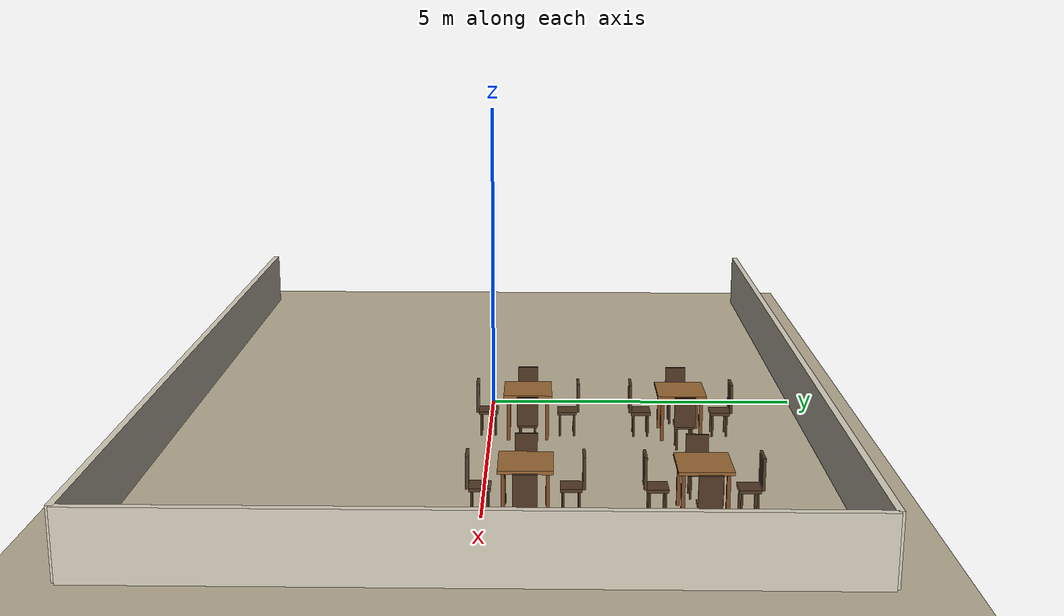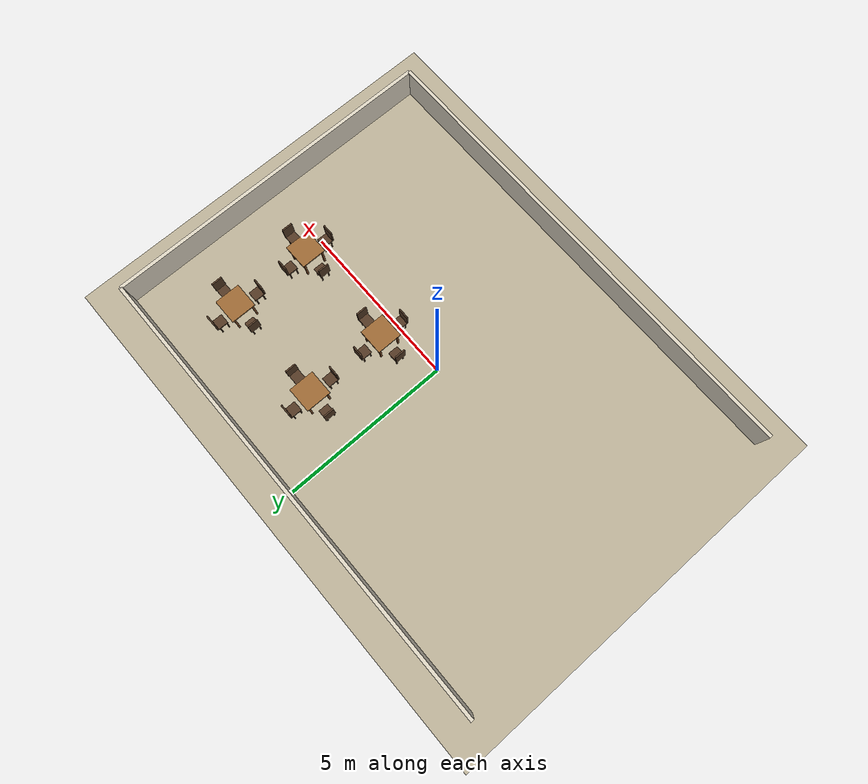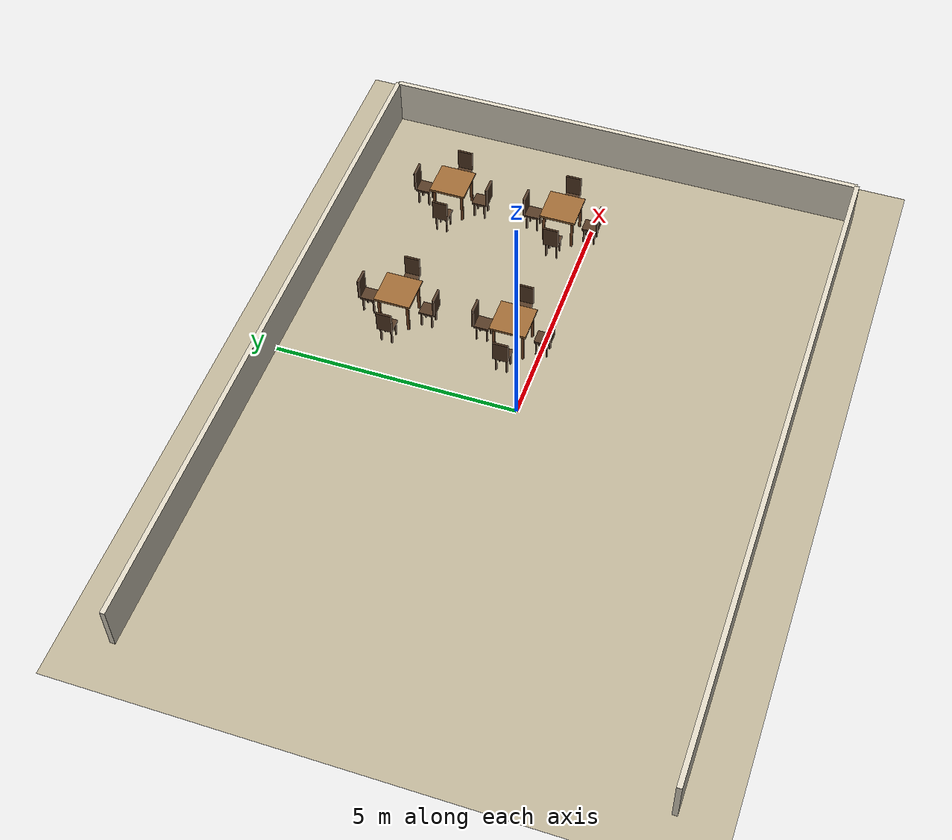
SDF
<sdf version="1.9">
 <world name="restaurant">
  <model name="ground">
   <static>true</static>
   <link name="link">
    <collision name="collision">
     <geometry><plane><normal>0 0 1</normal><size>16 12</size></plane></geometry>
    </collision>
    <visual name="visual">
     <geometry><plane><normal>0 0 1</normal><size>16 12</size></plane></geometry>
     <material><ambient>0.62 0.58 0.50 1</ambient><diffuse>0.72 0.68 0.58 1</diffuse></material>
    </visual>
   </link>
  </model>
  <model name="wall_north">
   <static>true</static>
   <pose>0 5.05 0.5 0 0 0</pose>
   <link name="link">
    <collision name="c"><geometry><box><size>14.1 0.1 1.0</size></box></geometry></collision>
    <visual name="v">
     <geometry><box><size>14.1 0.1 1.0</size></box></geometry>
     <material><ambient>0.85 0.82 0.75 1</ambient><diffuse>0.85 0.82 0.75 1</diffuse></material>
    </visual>
   </link>
  </model>
  <model name="wall_south">
   <static>true</static>
   <pose>0 -5.05 0.5 0 0 0</pose>
   <link name="link">
    <collision name="c"><geometry><box><size>14.1 0.1 1.0</size></box></geometry></collision>
    <visual name="v">
     <geometry><box><size>14.1 0.1 1.0</size></box></geometry>
     <material><ambient>0.85 0.82 0.75 1</ambient><diffuse>0.85 0.82 0.75 1</diffuse></material>
    </visual>
   </link>
  </model>
  <model name="wall_east">
   <static>true</static>
   <pose>7.05 0 0.5 0 0 0</pose>
   <link name="link">
    <collision name="c"><geometry><box><size>0.1 10.1 1.0</size></box></geometry></collision>
    <visual name="v">
     <geometry><box><size>0.1 10.1 1.0</size></box></geometry>
     <material><ambient>0.85 0.82 0.75 1</ambient><diffuse>0.85 0.82 0.75 1</diffuse></material>
    </visual>
   </link>
  </model>
  <model name="table_3">
   <static>true</static>
   <pose>1.600 3.000 0 0 0 0</pose>
   <link name="link">
    <collision name="top_c">
     <pose>0 0 0.72 0 0 0</pose>
     <geometry><box><size>0.75 0.75 0.05</size></box></geometry>
    </collision>
    <visual name="top_v">
     <pose>0 0 0.72 0 0 0</pose>
     <geometry><box><size>0.75 0.75 0.05</size></box></geometry>
     <material><ambient>0.50 0.30 0.15 1</ambient><diffuse>0.60 0.40 0.20 1</diffuse></material>
    </visual>
    <collision name="leg1_c">
     <pose>0.30 0.30 0.36 0 0 0</pose>
     <geometry><box><size>0.05 0.05 0.72</size></box></geometry>
    </collision>
    <visual name="leg1_v">
     <pose>0.30 0.30 0.36 0 0 0</pose>
     <geometry><box><size>0.05 0.05 0.72</size></box></geometry>
     <material><ambient>0.40 0.25 0.10 1</ambient><diffuse>0.50 0.30 0.15 1</diffuse></material>
    </visual>
    <collision name="leg2_c">
     <pose>-0.30 0.30 0.36 0 0 0</pose>
     <geometry><box><size>0.05 0.05 0.72</size></box></geometry>
    </collision>
    <visual name="leg2_v">
     <pose>-0.30 0.30 0.36 0 0 0</pose>
     <geometry><box><size>0.05 0.05 0.72</size></box></geometry>
     <material><ambient>0.40 0.25 0.10 1</ambient><diffuse>0.50 0.30 0.15 1</diffuse></material>
    </visual>
    <collision name="leg3_c">
     <pose>0.30 -0.30 0.36 0 0 0</pose>
     <geometry><box><size>0.05 0.05 0.72</size></box></geometry>
    </collision>
    <visual name="leg3_v">
     <pose>0.30 -0.30 0.36 0 0 0</pose>
     <geometry><box><size>0.05 0.05 0.72</size></box></geometry>
     <material><ambient>0.40 0.25 0.10 1</ambient><diffuse>0.50 0.30 0.15 1</diffuse></material>
    </visual>
    <collision name="leg4_c">
     <pose>-0.30 -0.30 0.36 0 0 0</pose>
     <geometry><box><size>0.05 0.05 0.72</size></box></geometry>
    </collision>
    <visual name="leg4_v">
     <pose>-0.30 -0.30 0.36 0 0 0</pose>
     <geometry><box><size>0.05 0.05 0.72</size></box></geometry>
     <material><ambient>0.40 0.25 0.10 1</ambient><diffuse>0.50 0.30 0.15 1</diffuse></material>
    </visual>
   </link>
  </model>
  <model name="chair_3_north">
   <static>true</static>
   <pose>1.600 3.620 0 0 0 3.14159</pose>
   <link name="link">
    <collision name="seat_c">
     <pose>0 0 0.38 0 0 0</pose>
     <geometry><box><size>0.30 0.30 0.05</size></box></geometry>
    </collision>
    <visual name="seat_v">
     <pose>0 0 0.38 0 0 0</pose>
     <geometry><box><size>0.30 0.30 0.05</size></box></geometry>
     <material><ambient>0.25 0.18 0.12 1</ambient><diffuse>0.32 0.22 0.14 1</diffuse></material>
    </visual>
    <collision name="back_c">
     <pose>0 -0.17 0.63 0 0 0</pose>
     <geometry><box><size>0.32 0.04 0.46</size></box></geometry>
    </collision>
    <visual name="back_v">
     <pose>0 -0.17 0.63 0 0 0</pose>
     <geometry><box><size>0.32 0.04 0.46</size></box></geometry>
     <material><ambient>0.25 0.18 0.12 1</ambient><diffuse>0.32 0.22 0.14 1</diffuse></material>
    </visual>
    <collision name="leg1_c">
     <pose>0.11 0.11 0.19 0 0 0</pose>
     <geometry><box><size>0.03 0.03 0.38</size></box></geometry>
    </collision>
    <visual name="leg1_v">
     <pose>0.11 0.11 0.19 0 0 0</pose>
     <geometry><box><size>0.03 0.03 0.38</size></box></geometry>
     <material><ambient>0.20 0.12 0.08 1</ambient><diffuse>0.28 0.18 0.10 1</diffuse></material>
    </visual>
    <collision name="leg2_c">
     <pose>-0.11 0.11 0.19 0 0 0</pose>
     <geometry><box><size>0.03 0.03 0.38</size></box></geometry>
    </collision>
    <visual name="leg2_v">
     <pose>-0.11 0.11 0.19 0 0 0</pose>
     <geometry><box><size>0.03 0.03 0.38</size></box></geometry>
     <material><ambient>0.20 0.12 0.08 1</ambient><diffuse>0.28 0.18 0.10 1</diffuse></material>
    </visual>
    <collision name="leg3_c">
     <pose>0.11 -0.11 0.19 0 0 0</pose>
     <geometry><box><size>0.03 0.03 0.38</size></box></geometry>
    </collision>
    <visual name="leg3_v">
     <pose>0.11 -0.11 0.19 0 0 0</pose>
     <geometry><box><size>0.03 0.03 0.38</size></box></geometry>
     <material><ambient>0.20 0.12 0.08 1</ambient><diffuse>0.28 0.18 0.10 1</diffuse></material>
    </visual>
    <collision name="leg4_c">
     <pose>-0.11 -0.11 0.19 0 0 0</pose>
     <geometry><box><size>0.03 0.03 0.38</size></box></geometry>
    </collision>
    <visual name="leg4_v">
     <pose>-0.11 -0.11 0.19 0 0 0</pose>
     <geometry><box><size>0.03 0.03 0.38</size></box></geometry>
     <material><ambient>0.20 0.12 0.08 1</ambient><diffuse>0.28 0.18 0.10 1</diffuse></material>
    </visual>
   </link>
  </model>
  <model name="chair_3_south">
   <static>true</static>
   <pose>1.600 2.380 0 0 0 0.00000</pose>
   <link name="link">
    <collision name="seat_c">
     <pose>0 0 0.38 0 0 0</pose>
     <geometry><box><size>0.30 0.30 0.05</size></box></geometry>
    </collision>
    <visual name="seat_v">
     <pose>0 0 0.38 0 0 0</pose>
     <geometry><box><size>0.30 0.30 0.05</size></box></geometry>
     <material><ambient>0.25 0.18 0.12 1</ambient><diffuse>0.32 0.22 0.14 1</diffuse></material>
    </visual>
    <collision name="back_c">
     <pose>0 -0.17 0.63 0 0 0</pose>
     <geometry><box><size>0.32 0.04 0.46</size></box></geometry>
    </collision>
    <visual name="back_v">
     <pose>0 -0.17 0.63 0 0 0</pose>
     <geometry><box><size>0.32 0.04 0.46</size></box></geometry>
     <material><ambient>0.25 0.18 0.12 1</ambient><diffuse>0.32 0.22 0.14 1</diffuse></material>
    </visual>
    <collision name="leg1_c">
     <pose>0.11 0.11 0.19 0 0 0</pose>
     <geometry><box><size>0.03 0.03 0.38</size></box></geometry>
    </collision>
    <visual name="leg1_v">
     <pose>0.11 0.11 0.19 0 0 0</pose>
     <geometry><box><size>0.03 0.03 0.38</size></box></geometry>
     <material><ambient>0.20 0.12 0.08 1</ambient><diffuse>0.28 0.18 0.10 1</diffuse></material>
    </visual>
    <collision name="leg2_c">
     <pose>-0.11 0.11 0.19 0 0 0</pose>
     <geometry><box><size>0.03 0.03 0.38</size></box></geometry>
    </collision>
    <visual name="leg2_v">
     <pose>-0.11 0.11 0.19 0 0 0</pose>
     <geometry><box><size>0.03 0.03 0.38</size></box></geometry>
     <material><ambient>0.20 0.12 0.08 1</ambient><diffuse>0.28 0.18 0.10 1</diffuse></material>
    </visual>
    <collision name="leg3_c">
     <pose>0.11 -0.11 0.19 0 0 0</pose>
     <geometry><box><size>0.03 0.03 0.38</size></box></geometry>
    </collision>
    <visual name="leg3_v">
     <pose>0.11 -0.11 0.19 0 0 0</pose>
     <geometry><box><size>0.03 0.03 0.38</size></box></geometry>
     <material><ambient>0.20 0.12 0.08 1</ambient><diffuse>0.28 0.18 0.10 1</diffuse></material>
    </visual>
    <collision name="leg4_c">
     <pose>-0.11 -0.11 0.19 0 0 0</pose>
     <geometry><box><size>0.03 0.03 0.38</size></box></geometry>
    </collision>
    <visual name="leg4_v">
     <pose>-0.11 -0.11 0.19 0 0 0</pose>
     <geometry><box><size>0.03 0.03 0.38</size></box></geometry>
     <material><ambient>0.20 0.12 0.08 1</ambient><diffuse>0.28 0.18 0.10 1</diffuse></material>
    </visual>
   </link>
  </model>
  <model name="chair_3_east">
   <static>true</static>
   <pose>2.220 3.000 0 0 0 1.57080</pose>
   <link name="link">
    <collision name="seat_c">
     <pose>0 0 0.38 0 0 0</pose>
     <geometry><box><size>0.30 0.30 0.05</size></box></geometry>
    </collision>
    <visual name="seat_v">
     <pose>0 0 0.38 0 0 0</pose>
     <geometry><box><size>0.30 0.30 0.05</size></box></geometry>
     <material><ambient>0.25 0.18 0.12 1</ambient><diffuse>0.32 0.22 0.14 1</diffuse></material>
    </visual>
    <collision name="back_c">
     <pose>0 -0.17 0.63 0 0 0</pose>
     <geometry><box><size>0.32 0.04 0.46</size></box></geometry>
    </collision>
    <visual name="back_v">
     <pose>0 -0.17 0.63 0 0 0</pose>
     <geometry><box><size>0.32 0.04 0.46</size></box></geometry>
     <material><ambient>0.25 0.18 0.12 1</ambient><diffuse>0.32 0.22 0.14 1</diffuse></material>
    </visual>
    <collision name="leg1_c">
     <pose>0.11 0.11 0.19 0 0 0</pose>
     <geometry><box><size>0.03 0.03 0.38</size></box></geometry>
    </collision>
    <visual name="leg1_v">
     <pose>0.11 0.11 0.19 0 0 0</pose>
     <geometry><box><size>0.03 0.03 0.38</size></box></geometry>
     <material><ambient>0.20 0.12 0.08 1</ambient><diffuse>0.28 0.18 0.10 1</diffuse></material>
    </visual>
    <collision name="leg2_c">
     <pose>-0.11 0.11 0.19 0 0 0</pose>
     <geometry><box><size>0.03 0.03 0.38</size></box></geometry>
    </collision>
    <visual name="leg2_v">
     <pose>-0.11 0.11 0.19 0 0 0</pose>
     <geometry><box><size>0.03 0.03 0.38</size></box></geometry>
     <material><ambient>0.20 0.12 0.08 1</ambient><diffuse>0.28 0.18 0.10 1</diffuse></material>
    </visual>
    <collision name="leg3_c">
     <pose>0.11 -0.11 0.19 0 0 0</pose>
     <geometry><box><size>0.03 0.03 0.38</size></box></geometry>
    </collision>
    <visual name="leg3_v">
     <pose>0.11 -0.11 0.19 0 0 0</pose>
     <geometry><box><size>0.03 0.03 0.38</size></box></geometry>
     <material><ambient>0.20 0.12 0.08 1</ambient><diffuse>0.28 0.18 0.10 1</diffuse></material>
    </visual>
    <collision name="leg4_c">
     <pose>-0.11 -0.11 0.19 0 0 0</pose>
     <geometry><box><size>0.03 0.03 0.38</size></box></geometry>
    </collision>
    <visual name="leg4_v">
     <pose>-0.11 -0.11 0.19 0 0 0</pose>
     <geometry><box><size>0.03 0.03 0.38</size></box></geometry>
     <material><ambient>0.20 0.12 0.08 1</ambient><diffuse>0.28 0.18 0.10 1</diffuse></material>
    </visual>
   </link>
  </model>
  <model name="chair_3_west">
   <static>true</static>
   <pose>0.980 3.000 0 0 0 -1.57080</pose>
   <link name="link">
    <collision name="seat_c">
     <pose>0 0 0.38 0 0 0</pose>
     <geometry><box><size>0.30 0.30 0.05</size></box></geometry>
    </collision>
    <visual name="seat_v">
     <pose>0 0 0.38 0 0 0</pose>
     <geometry><box><size>0.30 0.30 0.05</size></box></geometry>
     <material><ambient>0.25 0.18 0.12 1</ambient><diffuse>0.32 0.22 0.14 1</diffuse></material>
    </visual>
    <collision name="back_c">
     <pose>0 -0.17 0.63 0 0 0</pose>
     <geometry><box><size>0.32 0.04 0.46</size></box></geometry>
    </collision>
    <visual name="back_v">
     <pose>0 -0.17 0.63 0 0 0</pose>
     <geometry><box><size>0.32 0.04 0.46</size></box></geometry>
     <material><ambient>0.25 0.18 0.12 1</ambient><diffuse>0.32 0.22 0.14 1</diffuse></material>
    </visual>
    <collision name="leg1_c">
     <pose>0.11 0.11 0.19 0 0 0</pose>
     <geometry><box><size>0.03 0.03 0.38</size></box></geometry>
    </collision>
    <visual name="leg1_v">
     <pose>0.11 0.11 0.19 0 0 0</pose>
     <geometry><box><size>0.03 0.03 0.38</size></box></geometry>
     <material><ambient>0.20 0.12 0.08 1</ambient><diffuse>0.28 0.18 0.10 1</diffuse></material>
    </visual>
    <collision name="leg2_c">
     <pose>-0.11 0.11 0.19 0 0 0</pose>
     <geometry><box><size>0.03 0.03 0.38</size></box></geometry>
    </collision>
    <visual name="leg2_v">
     <pose>-0.11 0.11 0.19 0 0 0</pose>
     <geometry><box><size>0.03 0.03 0.38</size></box></geometry>
     <material><ambient>0.20 0.12 0.08 1</ambient><diffuse>0.28 0.18 0.10 1</diffuse></material>
    </visual>
    <collision name="leg3_c">
     <pose>0.11 -0.11 0.19 0 0 0</pose>
     <geometry><box><size>0.03 0.03 0.38</size></box></geometry>
    </collision>
    <visual name="leg3_v">
     <pose>0.11 -0.11 0.19 0 0 0</pose>
     <geometry><box><size>0.03 0.03 0.38</size></box></geometry>
     <material><ambient>0.20 0.12 0.08 1</ambient><diffuse>0.28 0.18 0.10 1</diffuse></material>
    </visual>
    <collision name="leg4_c">
     <pose>-0.11 -0.11 0.19 0 0 0</pose>
     <geometry><box><size>0.03 0.03 0.38</size></box></geometry>
    </collision>
    <visual name="leg4_v">
     <pose>-0.11 -0.11 0.19 0 0 0</pose>
     <geometry><box><size>0.03 0.03 0.38</size></box></geometry>
     <material><ambient>0.20 0.12 0.08 1</ambient><diffuse>0.28 0.18 0.10 1</diffuse></material>
    </visual>
   </link>
  </model>
  <model name="table_4">
   <static>true</static>
   <pose>4.800 3.000 0 0 0 0</pose>
   <link name="link">
    <collision name="top_c">
     <pose>0 0 0.72 0 0 0</pose>
     <geometry><box><size>0.75 0.75 0.05</size></box></geometry>
    </collision>
    <visual name="top_v">
     <pose>0 0 0.72 0 0 0</pose>
     <geometry><box><size>0.75 0.75 0.05</size></box></geometry>
     <material><ambient>0.50 0.30 0.15 1</ambient><diffuse>0.60 0.40 0.20 1</diffuse></material>
    </visual>
    <collision name="leg1_c">
     <pose>0.30 0.30 0.36 0 0 0</pose>
     <geometry><box><size>0.05 0.05 0.72</size></box></geometry>
    </collision>
    <visual name="leg1_v">
     <pose>0.30 0.30 0.36 0 0 0</pose>
     <geometry><box><size>0.05 0.05 0.72</size></box></geometry>
     <material><ambient>0.40 0.25 0.10 1</ambient><diffuse>0.50 0.30 0.15 1</diffuse></material>
    </visual>
    <collision name="leg2_c">
     <pose>-0.30 0.30 0.36 0 0 0</pose>
     <geometry><box><size>0.05 0.05 0.72</size></box></geometry>
    </collision>
    <visual name="leg2_v">
     <pose>-0.30 0.30 0.36 0 0 0</pose>
     <geometry><box><size>0.05 0.05 0.72</size></box></geometry>
     <material><ambient>0.40 0.25 0.10 1</ambient><diffuse>0.50 0.30 0.15 1</diffuse></material>
    </visual>
    <collision name="leg3_c">
     <pose>0.30 -0.30 0.36 0 0 0</pose>
     <geometry><box><size>0.05 0.05 0.72</size></box></geometry>
    </collision>
    <visual name="leg3_v">
     <pose>0.30 -0.30 0.36 0 0 0</pose>
     <geometry><box><size>0.05 0.05 0.72</size></box></geometry>
     <material><ambient>0.40 0.25 0.10 1</ambient><diffuse>0.50 0.30 0.15 1</diffuse></material>
    </visual>
    <collision name="leg4_c">
     <pose>-0.30 -0.30 0.36 0 0 0</pose>
     <geometry><box><size>0.05 0.05 0.72</size></box></geometry>
    </collision>
    <visual name="leg4_v">
     <pose>-0.30 -0.30 0.36 0 0 0</pose>
     <geometry><box><size>0.05 0.05 0.72</size></box></geometry>
     <material><ambient>0.40 0.25 0.10 1</ambient><diffuse>0.50 0.30 0.15 1</diffuse></material>
    </visual>
   </link>
  </model>
  <model name="chair_4_north">
   <static>true</static>
   <pose>4.800 3.620 0 0 0 3.14159</pose>
   <link name="link">
    <collision name="seat_c">
     <pose>0 0 0.38 0 0 0</pose>
     <geometry><box><size>0.30 0.30 0.05</size></box></geometry>
    </collision>
    <visual name="seat_v">
     <pose>0 0 0.38 0 0 0</pose>
     <geometry><box><size>0.30 0.30 0.05</size></box></geometry>
     <material><ambient>0.25 0.18 0.12 1</ambient><diffuse>0.32 0.22 0.14 1</diffuse></material>
    </visual>
    <collision name="back_c">
     <pose>0 -0.17 0.63 0 0 0</pose>
     <geometry><box><size>0.32 0.04 0.46</size></box></geometry>
    </collision>
    <visual name="back_v">
     <pose>0 -0.17 0.63 0 0 0</pose>
     <geometry><box><size>0.32 0.04 0.46</size></box></geometry>
     <material><ambient>0.25 0.18 0.12 1</ambient><diffuse>0.32 0.22 0.14 1</diffuse></material>
    </visual>
    <collision name="leg1_c">
     <pose>0.11 0.11 0.19 0 0 0</pose>
     <geometry><box><size>0.03 0.03 0.38</size></box></geometry>
    </collision>
    <visual name="leg1_v">
     <pose>0.11 0.11 0.19 0 0 0</pose>
     <geometry><box><size>0.03 0.03 0.38</size></box></geometry>
     <material><ambient>0.20 0.12 0.08 1</ambient><diffuse>0.28 0.18 0.10 1</diffuse></material>
    </visual>
    <collision name="leg2_c">
     <pose>-0.11 0.11 0.19 0 0 0</pose>
     <geometry><box><size>0.03 0.03 0.38</size></box></geometry>
    </collision>
    <visual name="leg2_v">
     <pose>-0.11 0.11 0.19 0 0 0</pose>
     <geometry><box><size>0.03 0.03 0.38</size></box></geometry>
     <material><ambient>0.20 0.12 0.08 1</ambient><diffuse>0.28 0.18 0.10 1</diffuse></material>
    </visual>
    <collision name="leg3_c">
     <pose>0.11 -0.11 0.19 0 0 0</pose>
     <geometry><box><size>0.03 0.03 0.38</size></box></geometry>
    </collision>
    <visual name="leg3_v">
     <pose>0.11 -0.11 0.19 0 0 0</pose>
     <geometry><box><size>0.03 0.03 0.38</size></box></geometry>
     <material><ambient>0.20 0.12 0.08 1</ambient><diffuse>0.28 0.18 0.10 1</diffuse></material>
    </visual>
    <collision name="leg4_c">
     <pose>-0.11 -0.11 0.19 0 0 0</pose>
     <geometry><box><size>0.03 0.03 0.38</size></box></geometry>
    </collision>
    <visual name="leg4_v">
     <pose>-0.11 -0.11 0.19 0 0 0</pose>
     <geometry><box><size>0.03 0.03 0.38</size></box></geometry>
     <material><ambient>0.20 0.12 0.08 1</ambient><diffuse>0.28 0.18 0.10 1</diffuse></material>
    </visual>
   </link>
  </model>
  <model name="chair_4_south">
   <static>true</static>
   <pose>4.800 2.380 0 0 0 0.00000</pose>
   <link name="link">
    <collision name="seat_c">
     <pose>0 0 0.38 0 0 0</pose>
     <geometry><box><size>0.30 0.30 0.05</size></box></geometry>
    </collision>
    <visual name="seat_v">
     <pose>0 0 0.38 0 0 0</pose>
     <geometry><box><size>0.30 0.30 0.05</size></box></geometry>
     <material><ambient>0.25 0.18 0.12 1</ambient><diffuse>0.32 0.22 0.14 1</diffuse></material>
    </visual>
    <collision name="back_c">
     <pose>0 -0.17 0.63 0 0 0</pose>
     <geometry><box><size>0.32 0.04 0.46</size></box></geometry>
    </collision>
    <visual name="back_v">
     <pose>0 -0.17 0.63 0 0 0</pose>
     <geometry><box><size>0.32 0.04 0.46</size></box></geometry>
     <material><ambient>0.25 0.18 0.12 1</ambient><diffuse>0.32 0.22 0.14 1</diffuse></material>
    </visual>
    <collision name="leg1_c">
     <pose>0.11 0.11 0.19 0 0 0</pose>
     <geometry><box><size>0.03 0.03 0.38</size></box></geometry>
    </collision>
    <visual name="leg1_v">
     <pose>0.11 0.11 0.19 0 0 0</pose>
     <geometry><box><size>0.03 0.03 0.38</size></box></geometry>
     <material><ambient>0.20 0.12 0.08 1</ambient><diffuse>0.28 0.18 0.10 1</diffuse></material>
    </visual>
    <collision name="leg2_c">
     <pose>-0.11 0.11 0.19 0 0 0</pose>
     <geometry><box><size>0.03 0.03 0.38</size></box></geometry>
    </collision>
    <visual name="leg2_v">
     <pose>-0.11 0.11 0.19 0 0 0</pose>
     <geometry><box><size>0.03 0.03 0.38</size></box></geometry>
     <material><ambient>0.20 0.12 0.08 1</ambient><diffuse>0.28 0.18 0.10 1</diffuse></material>
    </visual>
    <collision name="leg3_c">
     <pose>0.11 -0.11 0.19 0 0 0</pose>
     <geometry><box><size>0.03 0.03 0.38</size></box></geometry>
    </collision>
    <visual name="leg3_v">
     <pose>0.11 -0.11 0.19 0 0 0</pose>
     <geometry><box><size>0.03 0.03 0.38</size></box></geometry>
     <material><ambient>0.20 0.12 0.08 1</ambient><diffuse>0.28 0.18 0.10 1</diffuse></material>
    </visual>
    <collision name="leg4_c">
     <pose>-0.11 -0.11 0.19 0 0 0</pose>
     <geometry><box><size>0.03 0.03 0.38</size></box></geometry>
    </collision>
    <visual name="leg4_v">
     <pose>-0.11 -0.11 0.19 0 0 0</pose>
     <geometry><box><size>0.03 0.03 0.38</size></box></geometry>
     <material><ambient>0.20 0.12 0.08 1</ambient><diffuse>0.28 0.18 0.10 1</diffuse></material>
    </visual>
   </link>
  </model>
  <model name="chair_4_east">
   <static>true</static>
   <pose>5.420 3.000 0 0 0 1.57080</pose>
   <link name="link">
    <collision name="seat_c">
     <pose>0 0 0.38 0 0 0</pose>
     <geometry><box><size>0.30 0.30 0.05</size></box></geometry>
    </collision>
    <visual name="seat_v">
     <pose>0 0 0.38 0 0 0</pose>
     <geometry><box><size>0.30 0.30 0.05</size></box></geometry>
     <material><ambient>0.25 0.18 0.12 1</ambient><diffuse>0.32 0.22 0.14 1</diffuse></material>
    </visual>
    <collision name="back_c">
     <pose>0 -0.17 0.63 0 0 0</pose>
     <geometry><box><size>0.32 0.04 0.46</size></box></geometry>
    </collision>
    <visual name="back_v">
     <pose>0 -0.17 0.63 0 0 0</pose>
     <geometry><box><size>0.32 0.04 0.46</size></box></geometry>
     <material><ambient>0.25 0.18 0.12 1</ambient><diffuse>0.32 0.22 0.14 1</diffuse></material>
    </visual>
    <collision name="leg1_c">
     <pose>0.11 0.11 0.19 0 0 0</pose>
     <geometry><box><size>0.03 0.03 0.38</size></box></geometry>
    </collision>
    <visual name="leg1_v">
     <pose>0.11 0.11 0.19 0 0 0</pose>
     <geometry><box><size>0.03 0.03 0.38</size></box></geometry>
     <material><ambient>0.20 0.12 0.08 1</ambient><diffuse>0.28 0.18 0.10 1</diffuse></material>
    </visual>
    <collision name="leg2_c">
     <pose>-0.11 0.11 0.19 0 0 0</pose>
     <geometry><box><size>0.03 0.03 0.38</size></box></geometry>
    </collision>
    <visual name="leg2_v">
     <pose>-0.11 0.11 0.19 0 0 0</pose>
     <geometry><box><size>0.03 0.03 0.38</size></box></geometry>
     <material><ambient>0.20 0.12 0.08 1</ambient><diffuse>0.28 0.18 0.10 1</diffuse></material>
    </visual>
    <collision name="leg3_c">
     <pose>0.11 -0.11 0.19 0 0 0</pose>
     <geometry><box><size>0.03 0.03 0.38</size></box></geometry>
    </collision>
    <visual name="leg3_v">
     <pose>0.11 -0.11 0.19 0 0 0</pose>
     <geometry><box><size>0.03 0.03 0.38</size></box></geometry>
     <material><ambient>0.20 0.12 0.08 1</ambient><diffuse>0.28 0.18 0.10 1</diffuse></material>
    </visual>
    <collision name="leg4_c">
     <pose>-0.11 -0.11 0.19 0 0 0</pose>
     <geometry><box><size>0.03 0.03 0.38</size></box></geometry>
    </collision>
    <visual name="leg4_v">
     <pose>-0.11 -0.11 0.19 0 0 0</pose>
     <geometry><box><size>0.03 0.03 0.38</size></box></geometry>
     <material><ambient>0.20 0.12 0.08 1</ambient><diffuse>0.28 0.18 0.10 1</diffuse></material>
    </visual>
   </link>
  </model>
  <model name="chair_4_west">
   <static>true</static>
   <pose>4.180 3.000 0 0 0 -1.57080</pose>
   <link name="link">
    <collision name="seat_c">
     <pose>0 0 0.38 0 0 0</pose>
     <geometry><box><size>0.30 0.30 0.05</size></box></geometry>
    </collision>
    <visual name="seat_v">
     <pose>0 0 0.38 0 0 0</pose>
     <geometry><box><size>0.30 0.30 0.05</size></box></geometry>
     <material><ambient>0.25 0.18 0.12 1</ambient><diffuse>0.32 0.22 0.14 1</diffuse></material>
    </visual>
    <collision name="back_c">
     <pose>0 -0.17 0.63 0 0 0</pose>
     <geometry><box><size>0.32 0.04 0.46</size></box></geometry>
    </collision>
    <visual name="back_v">
     <pose>0 -0.17 0.63 0 0 0</pose>
     <geometry><box><size>0.32 0.04 0.46</size></box></geometry>
     <material><ambient>0.25 0.18 0.12 1</ambient><diffuse>0.32 0.22 0.14 1</diffuse></material>
    </visual>
    <collision name="leg1_c">
     <pose>0.11 0.11 0.19 0 0 0</pose>
     <geometry><box><size>0.03 0.03 0.38</size></box></geometry>
    </collision>
    <visual name="leg1_v">
     <pose>0.11 0.11 0.19 0 0 0</pose>
     <geometry><box><size>0.03 0.03 0.38</size></box></geometry>
     <material><ambient>0.20 0.12 0.08 1</ambient><diffuse>0.28 0.18 0.10 1</diffuse></material>
    </visual>
    <collision name="leg2_c">
     <pose>-0.11 0.11 0.19 0 0 0</pose>
     <geometry><box><size>0.03 0.03 0.38</size></box></geometry>
    </collision>
    <visual name="leg2_v">
     <pose>-0.11 0.11 0.19 0 0 0</pose>
     <geometry><box><size>0.03 0.03 0.38</size></box></geometry>
     <material><ambient>0.20 0.12 0.08 1</ambient><diffuse>0.28 0.18 0.10 1</diffuse></material>
    </visual>
    <collision name="leg3_c">
     <pose>0.11 -0.11 0.19 0 0 0</pose>
     <geometry><box><size>0.03 0.03 0.38</size></box></geometry>
    </collision>
    <visual name="leg3_v">
     <pose>0.11 -0.11 0.19 0 0 0</pose>
     <geometry><box><size>0.03 0.03 0.38</size></box></geometry>
     <material><ambient>0.20 0.12 0.08 1</ambient><diffuse>0.28 0.18 0.10 1</diffuse></material>
    </visual>
    <collision name="leg4_c">
     <pose>-0.11 -0.11 0.19 0 0 0</pose>
     <geometry><box><size>0.03 0.03 0.38</size></box></geometry>
    </collision>
    <visual name="leg4_v">
     <pose>-0.11 -0.11 0.19 0 0 0</pose>
     <geometry><box><size>0.03 0.03 0.38</size></box></geometry>
     <material><ambient>0.20 0.12 0.08 1</ambient><diffuse>0.28 0.18 0.10 1</diffuse></material>
    </visual>
   </link>
  </model>
  <model name="table_7">
   <static>true</static>
   <pose>1.600 0.600 0 0 0 0</pose>
   <link name="link">
    <collision name="top_c">
     <pose>0 0 0.72 0 0 0</pose>
     <geometry><box><size>0.75 0.75 0.05</size></box></geometry>
    </collision>
    <visual name="top_v">
     <pose>0 0 0.72 0 0 0</pose>
     <geometry><box><size>0.75 0.75 0.05</size></box></geometry>
     <material><ambient>0.50 0.30 0.15 1</ambient><diffuse>0.60 0.40 0.20 1</diffuse></material>
    </visual>
    <collision name="leg1_c">
     <pose>0.30 0.30 0.36 0 0 0</pose>
     <geometry><box><size>0.05 0.05 0.72</size></box></geometry>
    </collision>
    <visual name="leg1_v">
     <pose>0.30 0.30 0.36 0 0 0</pose>
     <geometry><box><size>0.05 0.05 0.72</size></box></geometry>
     <material><ambient>0.40 0.25 0.10 1</ambient><diffuse>0.50 0.30 0.15 1</diffuse></material>
    </visual>
    <collision name="leg2_c">
     <pose>-0.30 0.30 0.36 0 0 0</pose>
     <geometry><box><size>0.05 0.05 0.72</size></box></geometry>
    </collision>
    <visual name="leg2_v">
     <pose>-0.30 0.30 0.36 0 0 0</pose>
     <geometry><box><size>0.05 0.05 0.72</size></box></geometry>
     <material><ambient>0.40 0.25 0.10 1</ambient><diffuse>0.50 0.30 0.15 1</diffuse></material>
    </visual>
    <collision name="leg3_c">
     <pose>0.30 -0.30 0.36 0 0 0</pose>
     <geometry><box><size>0.05 0.05 0.72</size></box></geometry>
    </collision>
    <visual name="leg3_v">
     <pose>0.30 -0.30 0.36 0 0 0</pose>
     <geometry><box><size>0.05 0.05 0.72</size></box></geometry>
     <material><ambient>0.40 0.25 0.10 1</ambient><diffuse>0.50 0.30 0.15 1</diffuse></material>
    </visual>
    <collision name="leg4_c">
     <pose>-0.30 -0.30 0.36 0 0 0</pose>
     <geometry><box><size>0.05 0.05 0.72</size></box></geometry>
    </collision>
    <visual name="leg4_v">
     <pose>-0.30 -0.30 0.36 0 0 0</pose>
     <geometry><box><size>0.05 0.05 0.72</size></box></geometry>
     <material><ambient>0.40 0.25 0.10 1</ambient><diffuse>0.50 0.30 0.15 1</diffuse></material>
    </visual>
   </link>
  </model>
  <model name="chair_7_north">
   <static>true</static>
   <pose>1.600 1.220 0 0 0 3.14159</pose>
   <link name="link">
    <collision name="seat_c">
     <pose>0 0 0.38 0 0 0</pose>
     <geometry><box><size>0.30 0.30 0.05</size></box></geometry>
    </collision>
    <visual name="seat_v">
     <pose>0 0 0.38 0 0 0</pose>
     <geometry><box><size>0.30 0.30 0.05</size></box></geometry>
     <material><ambient>0.25 0.18 0.12 1</ambient><diffuse>0.32 0.22 0.14 1</diffuse></material>
    </visual>
    <collision name="back_c">
     <pose>0 -0.17 0.63 0 0 0</pose>
     <geometry><box><size>0.32 0.04 0.46</size></box></geometry>
    </collision>
    <visual name="back_v">
     <pose>0 -0.17 0.63 0 0 0</pose>
     <geometry><box><size>0.32 0.04 0.46</size></box></geometry>
     <material><ambient>0.25 0.18 0.12 1</ambient><diffuse>0.32 0.22 0.14 1</diffuse></material>
    </visual>
    <collision name="leg1_c">
     <pose>0.11 0.11 0.19 0 0 0</pose>
     <geometry><box><size>0.03 0.03 0.38</size></box></geometry>
    </collision>
    <visual name="leg1_v">
     <pose>0.11 0.11 0.19 0 0 0</pose>
     <geometry><box><size>0.03 0.03 0.38</size></box></geometry>
     <material><ambient>0.20 0.12 0.08 1</ambient><diffuse>0.28 0.18 0.10 1</diffuse></material>
    </visual>
    <collision name="leg2_c">
     <pose>-0.11 0.11 0.19 0 0 0</pose>
     <geometry><box><size>0.03 0.03 0.38</size></box></geometry>
    </collision>
    <visual name="leg2_v">
     <pose>-0.11 0.11 0.19 0 0 0</pose>
     <geometry><box><size>0.03 0.03 0.38</size></box></geometry>
     <material><ambient>0.20 0.12 0.08 1</ambient><diffuse>0.28 0.18 0.10 1</diffuse></material>
    </visual>
    <collision name="leg3_c">
     <pose>0.11 -0.11 0.19 0 0 0</pose>
     <geometry><box><size>0.03 0.03 0.38</size></box></geometry>
    </collision>
    <visual name="leg3_v">
     <pose>0.11 -0.11 0.19 0 0 0</pose>
     <geometry><box><size>0.03 0.03 0.38</size></box></geometry>
     <material><ambient>0.20 0.12 0.08 1</ambient><diffuse>0.28 0.18 0.10 1</diffuse></material>
    </visual>
    <collision name="leg4_c">
     <pose>-0.11 -0.11 0.19 0 0 0</pose>
     <geometry><box><size>0.03 0.03 0.38</size></box></geometry>
    </collision>
    <visual name="leg4_v">
     <pose>-0.11 -0.11 0.19 0 0 0</pose>
     <geometry><box><size>0.03 0.03 0.38</size></box></geometry>
     <material><ambient>0.20 0.12 0.08 1</ambient><diffuse>0.28 0.18 0.10 1</diffuse></material>
    </visual>
   </link>
  </model>
  <model name="chair_7_south">
   <static>true</static>
   <pose>1.600 -0.020 0 0 0 0.00000</pose>
   <link name="link">
    <collision name="seat_c">
     <pose>0 0 0.38 0 0 0</pose>
     <geometry><box><size>0.30 0.30 0.05</size></box></geometry>
    </collision>
    <visual name="seat_v">
     <pose>0 0 0.38 0 0 0</pose>
     <geometry><box><size>0.30 0.30 0.05</size></box></geometry>
     <material><ambient>0.25 0.18 0.12 1</ambient><diffuse>0.32 0.22 0.14 1</diffuse></material>
    </visual>
    <collision name="back_c">
     <pose>0 -0.17 0.63 0 0 0</pose>
     <geometry><box><size>0.32 0.04 0.46</size></box></geometry>
    </collision>
    <visual name="back_v">
     <pose>0 -0.17 0.63 0 0 0</pose>
     <geometry><box><size>0.32 0.04 0.46</size></box></geometry>
     <material><ambient>0.25 0.18 0.12 1</ambient><diffuse>0.32 0.22 0.14 1</diffuse></material>
    </visual>
    <collision name="leg1_c">
     <pose>0.11 0.11 0.19 0 0 0</pose>
     <geometry><box><size>0.03 0.03 0.38</size></box></geometry>
    </collision>
    <visual name="leg1_v">
     <pose>0.11 0.11 0.19 0 0 0</pose>
     <geometry><box><size>0.03 0.03 0.38</size></box></geometry>
     <material><ambient>0.20 0.12 0.08 1</ambient><diffuse>0.28 0.18 0.10 1</diffuse></material>
    </visual>
    <collision name="leg2_c">
     <pose>-0.11 0.11 0.19 0 0 0</pose>
     <geometry><box><size>0.03 0.03 0.38</size></box></geometry>
    </collision>
    <visual name="leg2_v">
     <pose>-0.11 0.11 0.19 0 0 0</pose>
     <geometry><box><size>0.03 0.03 0.38</size></box></geometry>
     <material><ambient>0.20 0.12 0.08 1</ambient><diffuse>0.28 0.18 0.10 1</diffuse></material>
    </visual>
    <collision name="leg3_c">
     <pose>0.11 -0.11 0.19 0 0 0</pose>
     <geometry><box><size>0.03 0.03 0.38</size></box></geometry>
    </collision>
    <visual name="leg3_v">
     <pose>0.11 -0.11 0.19 0 0 0</pose>
     <geometry><box><size>0.03 0.03 0.38</size></box></geometry>
     <material><ambient>0.20 0.12 0.08 1</ambient><diffuse>0.28 0.18 0.10 1</diffuse></material>
    </visual>
    <collision name="leg4_c">
     <pose>-0.11 -0.11 0.19 0 0 0</pose>
     <geometry><box><size>0.03 0.03 0.38</size></box></geometry>
    </collision>
    <visual name="leg4_v">
     <pose>-0.11 -0.11 0.19 0 0 0</pose>
     <geometry><box><size>0.03 0.03 0.38</size></box></geometry>
     <material><ambient>0.20 0.12 0.08 1</ambient><diffuse>0.28 0.18 0.10 1</diffuse></material>
    </visual>
   </link>
  </model>
  <model name="chair_7_east">
   <static>true</static>
   <pose>2.220 0.600 0 0 0 1.57080</pose>
   <link name="link">
    <collision name="seat_c">
     <pose>0 0 0.38 0 0 0</pose>
     <geometry><box><size>0.30 0.30 0.05</size></box></geometry>
    </collision>
    <visual name="seat_v">
     <pose>0 0 0.38 0 0 0</pose>
     <geometry><box><size>0.30 0.30 0.05</size></box></geometry>
     <material><ambient>0.25 0.18 0.12 1</ambient><diffuse>0.32 0.22 0.14 1</diffuse></material>
    </visual>
    <collision name="back_c">
     <pose>0 -0.17 0.63 0 0 0</pose>
     <geometry><box><size>0.32 0.04 0.46</size></box></geometry>
    </collision>
    <visual name="back_v">
     <pose>0 -0.17 0.63 0 0 0</pose>
     <geometry><box><size>0.32 0.04 0.46</size></box></geometry>
     <material><ambient>0.25 0.18 0.12 1</ambient><diffuse>0.32 0.22 0.14 1</diffuse></material>
    </visual>
    <collision name="leg1_c">
     <pose>0.11 0.11 0.19 0 0 0</pose>
     <geometry><box><size>0.03 0.03 0.38</size></box></geometry>
    </collision>
    <visual name="leg1_v">
     <pose>0.11 0.11 0.19 0 0 0</pose>
     <geometry><box><size>0.03 0.03 0.38</size></box></geometry>
     <material><ambient>0.20 0.12 0.08 1</ambient><diffuse>0.28 0.18 0.10 1</diffuse></material>
    </visual>
    <collision name="leg2_c">
     <pose>-0.11 0.11 0.19 0 0 0</pose>
     <geometry><box><size>0.03 0.03 0.38</size></box></geometry>
    </collision>
    <visual name="leg2_v">
     <pose>-0.11 0.11 0.19 0 0 0</pose>
     <geometry><box><size>0.03 0.03 0.38</size></box></geometry>
     <material><ambient>0.20 0.12 0.08 1</ambient><diffuse>0.28 0.18 0.10 1</diffuse></material>
    </visual>
    <collision name="leg3_c">
     <pose>0.11 -0.11 0.19 0 0 0</pose>
     <geometry><box><size>0.03 0.03 0.38</size></box></geometry>
    </collision>
    <visual name="leg3_v">
     <pose>0.11 -0.11 0.19 0 0 0</pose>
     <geometry><box><size>0.03 0.03 0.38</size></box></geometry>
     <material><ambient>0.20 0.12 0.08 1</ambient><diffuse>0.28 0.18 0.10 1</diffuse></material>
    </visual>
    <collision name="leg4_c">
     <pose>-0.11 -0.11 0.19 0 0 0</pose>
     <geometry><box><size>0.03 0.03 0.38</size></box></geometry>
    </collision>
    <visual name="leg4_v">
     <pose>-0.11 -0.11 0.19 0 0 0</pose>
     <geometry><box><size>0.03 0.03 0.38</size></box></geometry>
     <material><ambient>0.20 0.12 0.08 1</ambient><diffuse>0.28 0.18 0.10 1</diffuse></material>
    </visual>
   </link>
  </model>
  <model name="chair_7_west">
   <static>true</static>
   <pose>0.980 0.600 0 0 0 -1.57080</pose>
   <link name="link">
    <collision name="seat_c">
     <pose>0 0 0.38 0 0 0</pose>
     <geometry><box><size>0.30 0.30 0.05</size></box></geometry>
    </collision>
    <visual name="seat_v">
     <pose>0 0 0.38 0 0 0</pose>
     <geometry><box><size>0.30 0.30 0.05</size></box></geometry>
     <material><ambient>0.25 0.18 0.12 1</ambient><diffuse>0.32 0.22 0.14 1</diffuse></material>
    </visual>
    <collision name="back_c">
     <pose>0 -0.17 0.63 0 0 0</pose>
     <geometry><box><size>0.32 0.04 0.46</size></box></geometry>
    </collision>
    <visual name="back_v">
     <pose>0 -0.17 0.63 0 0 0</pose>
     <geometry><box><size>0.32 0.04 0.46</size></box></geometry>
     <material><ambient>0.25 0.18 0.12 1</ambient><diffuse>0.32 0.22 0.14 1</diffuse></material>
    </visual>
    <collision name="leg1_c">
     <pose>0.11 0.11 0.19 0 0 0</pose>
     <geometry><box><size>0.03 0.03 0.38</size></box></geometry>
    </collision>
    <visual name="leg1_v">
     <pose>0.11 0.11 0.19 0 0 0</pose>
     <geometry><box><size>0.03 0.03 0.38</size></box></geometry>
     <material><ambient>0.20 0.12 0.08 1</ambient><diffuse>0.28 0.18 0.10 1</diffuse></material>
    </visual>
    <collision name="leg2_c">
     <pose>-0.11 0.11 0.19 0 0 0</pose>
     <geometry><box><size>0.03 0.03 0.38</size></box></geometry>
    </collision>
    <visual name="leg2_v">
     <pose>-0.11 0.11 0.19 0 0 0</pose>
     <geometry><box><size>0.03 0.03 0.38</size></box></geometry>
     <material><ambient>0.20 0.12 0.08 1</ambient><diffuse>0.28 0.18 0.10 1</diffuse></material>
    </visual>
    <collision name="leg3_c">
     <pose>0.11 -0.11 0.19 0 0 0</pose>
     <geometry><box><size>0.03 0.03 0.38</size></box></geometry>
    </collision>
    <visual name="leg3_v">
     <pose>0.11 -0.11 0.19 0 0 0</pose>
     <geometry><box><size>0.03 0.03 0.38</size></box></geometry>
     <material><ambient>0.20 0.12 0.08 1</ambient><diffuse>0.28 0.18 0.10 1</diffuse></material>
    </visual>
    <collision name="leg4_c">
     <pose>-0.11 -0.11 0.19 0 0 0</pose>
     <geometry><box><size>0.03 0.03 0.38</size></box></geometry>
    </collision>
    <visual name="leg4_v">
     <pose>-0.11 -0.11 0.19 0 0 0</pose>
     <geometry><box><size>0.03 0.03 0.38</size></box></geometry>
     <material><ambient>0.20 0.12 0.08 1</ambient><diffuse>0.28 0.18 0.10 1</diffuse></material>
    </visual>
   </link>
  </model>
  <model name="table_8">
   <static>true</static>
   <pose>4.800 0.600 0 0 0 0</pose>
   <link name="link">
    <collision name="top_c">
     <pose>0 0 0.72 0 0 0</pose>
     <geometry><box><size>0.75 0.75 0.05</size></box></geometry>
    </collision>
    <visual name="top_v">
     <pose>0 0 0.72 0 0 0</pose>
     <geometry><box><size>0.75 0.75 0.05</size></box></geometry>
     <material><ambient>0.50 0.30 0.15 1</ambient><diffuse>0.60 0.40 0.20 1</diffuse></material>
    </visual>
    <collision name="leg1_c">
     <pose>0.30 0.30 0.36 0 0 0</pose>
     <geometry><box><size>0.05 0.05 0.72</size></box></geometry>
    </collision>
    <visual name="leg1_v">
     <pose>0.30 0.30 0.36 0 0 0</pose>
     <geometry><box><size>0.05 0.05 0.72</size></box></geometry>
     <material><ambient>0.40 0.25 0.10 1</ambient><diffuse>0.50 0.30 0.15 1</diffuse></material>
    </visual>
    <collision name="leg2_c">
     <pose>-0.30 0.30 0.36 0 0 0</pose>
     <geometry><box><size>0.05 0.05 0.72</size></box></geometry>
    </collision>
    <visual name="leg2_v">
     <pose>-0.30 0.30 0.36 0 0 0</pose>
     <geometry><box><size>0.05 0.05 0.72</size></box></geometry>
     <material><ambient>0.40 0.25 0.10 1</ambient><diffuse>0.50 0.30 0.15 1</diffuse></material>
    </visual>
    <collision name="leg3_c">
     <pose>0.30 -0.30 0.36 0 0 0</pose>
     <geometry><box><size>0.05 0.05 0.72</size></box></geometry>
    </collision>
    <visual name="leg3_v">
     <pose>0.30 -0.30 0.36 0 0 0</pose>
     <geometry><box><size>0.05 0.05 0.72</size></box></geometry>
     <material><ambient>0.40 0.25 0.10 1</ambient><diffuse>0.50 0.30 0.15 1</diffuse></material>
    </visual>
    <collision name="leg4_c">
     <pose>-0.30 -0.30 0.36 0 0 0</pose>
     <geometry><box><size>0.05 0.05 0.72</size></box></geometry>
    </collision>
    <visual name="leg4_v">
     <pose>-0.30 -0.30 0.36 0 0 0</pose>
     <geometry><box><size>0.05 0.05 0.72</size></box></geometry>
     <material><ambient>0.40 0.25 0.10 1</ambient><diffuse>0.50 0.30 0.15 1</diffuse></material>
    </visual>
   </link>
  </model>
  <model name="chair_8_north">
   <static>true</static>
   <pose>4.800 1.220 0 0 0 3.14159</pose>
   <link name="link">
    <collision name="seat_c">
     <pose>0 0 0.38 0 0 0</pose>
     <geometry><box><size>0.30 0.30 0.05</size></box></geometry>
    </collision>
    <visual name="seat_v">
     <pose>0 0 0.38 0 0 0</pose>
     <geometry><box><size>0.30 0.30 0.05</size></box></geometry>
     <material><ambient>0.25 0.18 0.12 1</ambient><diffuse>0.32 0.22 0.14 1</diffuse></material>
    </visual>
    <collision name="back_c">
     <pose>0 -0.17 0.63 0 0 0</pose>
     <geometry><box><size>0.32 0.04 0.46</size></box></geometry>
    </collision>
    <visual name="back_v">
     <pose>0 -0.17 0.63 0 0 0</pose>
     <geometry><box><size>0.32 0.04 0.46</size></box></geometry>
     <material><ambient>0.25 0.18 0.12 1</ambient><diffuse>0.32 0.22 0.14 1</diffuse></material>
    </visual>
    <collision name="leg1_c">
     <pose>0.11 0.11 0.19 0 0 0</pose>
     <geometry><box><size>0.03 0.03 0.38</size></box></geometry>
    </collision>
    <visual name="leg1_v">
     <pose>0.11 0.11 0.19 0 0 0</pose>
     <geometry><box><size>0.03 0.03 0.38</size></box></geometry>
     <material><ambient>0.20 0.12 0.08 1</ambient><diffuse>0.28 0.18 0.10 1</diffuse></material>
    </visual>
    <collision name="leg2_c">
     <pose>-0.11 0.11 0.19 0 0 0</pose>
     <geometry><box><size>0.03 0.03 0.38</size></box></geometry>
    </collision>
    <visual name="leg2_v">
     <pose>-0.11 0.11 0.19 0 0 0</pose>
     <geometry><box><size>0.03 0.03 0.38</size></box></geometry>
     <material><ambient>0.20 0.12 0.08 1</ambient><diffuse>0.28 0.18 0.10 1</diffuse></material>
    </visual>
    <collision name="leg3_c">
     <pose>0.11 -0.11 0.19 0 0 0</pose>
     <geometry><box><size>0.03 0.03 0.38</size></box></geometry>
    </collision>
    <visual name="leg3_v">
     <pose>0.11 -0.11 0.19 0 0 0</pose>
     <geometry><box><size>0.03 0.03 0.38</size></box></geometry>
     <material><ambient>0.20 0.12 0.08 1</ambient><diffuse>0.28 0.18 0.10 1</diffuse></material>
    </visual>
    <collision name="leg4_c">
     <pose>-0.11 -0.11 0.19 0 0 0</pose>
     <geometry><box><size>0.03 0.03 0.38</size></box></geometry>
    </collision>
    <visual name="leg4_v">
     <pose>-0.11 -0.11 0.19 0 0 0</pose>
     <geometry><box><size>0.03 0.03 0.38</size></box></geometry>
     <material><ambient>0.20 0.12 0.08 1</ambient><diffuse>0.28 0.18 0.10 1</diffuse></material>
    </visual>
   </link>
  </model>
  <model name="chair_8_south">
   <static>true</static>
   <pose>4.800 -0.020 0 0 0 0.00000</pose>
   <link name="link">
    <collision name="seat_c">
     <pose>0 0 0.38 0 0 0</pose>
     <geometry><box><size>0.30 0.30 0.05</size></box></geometry>
    </collision>
    <visual name="seat_v">
     <pose>0 0 0.38 0 0 0</pose>
     <geometry><box><size>0.30 0.30 0.05</size></box></geometry>
     <material><ambient>0.25 0.18 0.12 1</ambient><diffuse>0.32 0.22 0.14 1</diffuse></material>
    </visual>
    <collision name="back_c">
     <pose>0 -0.17 0.63 0 0 0</pose>
     <geometry><box><size>0.32 0.04 0.46</size></box></geometry>
    </collision>
    <visual name="back_v">
     <pose>0 -0.17 0.63 0 0 0</pose>
     <geometry><box><size>0.32 0.04 0.46</size></box></geometry>
     <material><ambient>0.25 0.18 0.12 1</ambient><diffuse>0.32 0.22 0.14 1</diffuse></material>
    </visual>
    <collision name="leg1_c">
     <pose>0.11 0.11 0.19 0 0 0</pose>
     <geometry><box><size>0.03 0.03 0.38</size></box></geometry>
    </collision>
    <visual name="leg1_v">
     <pose>0.11 0.11 0.19 0 0 0</pose>
     <geometry><box><size>0.03 0.03 0.38</size></box></geometry>
     <material><ambient>0.20 0.12 0.08 1</ambient><diffuse>0.28 0.18 0.10 1</diffuse></material>
    </visual>
    <collision name="leg2_c">
     <pose>-0.11 0.11 0.19 0 0 0</pose>
     <geometry><box><size>0.03 0.03 0.38</size></box></geometry>
    </collision>
    <visual name="leg2_v">
     <pose>-0.11 0.11 0.19 0 0 0</pose>
     <geometry><box><size>0.03 0.03 0.38</size></box></geometry>
     <material><ambient>0.20 0.12 0.08 1</ambient><diffuse>0.28 0.18 0.10 1</diffuse></material>
    </visual>
    <collision name="leg3_c">
     <pose>0.11 -0.11 0.19 0 0 0</pose>
     <geometry><box><size>0.03 0.03 0.38</size></box></geometry>
    </collision>
    <visual name="leg3_v">
     <pose>0.11 -0.11 0.19 0 0 0</pose>
     <geometry><box><size>0.03 0.03 0.38</size></box></geometry>
     <material><ambient>0.20 0.12 0.08 1</ambient><diffuse>0.28 0.18 0.10 1</diffuse></material>
    </visual>
    <collision name="leg4_c">
     <pose>-0.11 -0.11 0.19 0 0 0</pose>
     <geometry><box><size>0.03 0.03 0.38</size></box></geometry>
    </collision>
    <visual name="leg4_v">
     <pose>-0.11 -0.11 0.19 0 0 0</pose>
     <geometry><box><size>0.03 0.03 0.38</size></box></geometry>
     <material><ambient>0.20 0.12 0.08 1</ambient><diffuse>0.28 0.18 0.10 1</diffuse></material>
    </visual>
   </link>
  </model>
  <model name="chair_8_east">
   <static>true</static>
   <pose>5.420 0.600 0 0 0 1.57080</pose>
   <link name="link">
    <collision name="seat_c">
     <pose>0 0 0.38 0 0 0</pose>
     <geometry><box><size>0.30 0.30 0.05</size></box></geometry>
    </collision>
    <visual name="seat_v">
     <pose>0 0 0.38 0 0 0</pose>
     <geometry><box><size>0.30 0.30 0.05</size></box></geometry>
     <material><ambient>0.25 0.18 0.12 1</ambient><diffuse>0.32 0.22 0.14 1</diffuse></material>
    </visual>
    <collision name="back_c">
     <pose>0 -0.17 0.63 0 0 0</pose>
     <geometry><box><size>0.32 0.04 0.46</size></box></geometry>
    </collision>
    <visual name="back_v">
     <pose>0 -0.17 0.63 0 0 0</pose>
     <geometry><box><size>0.32 0.04 0.46</size></box></geometry>
     <material><ambient>0.25 0.18 0.12 1</ambient><diffuse>0.32 0.22 0.14 1</diffuse></material>
    </visual>
    <collision name="leg1_c">
     <pose>0.11 0.11 0.19 0 0 0</pose>
     <geometry><box><size>0.03 0.03 0.38</size></box></geometry>
    </collision>
    <visual name="leg1_v">
     <pose>0.11 0.11 0.19 0 0 0</pose>
     <geometry><box><size>0.03 0.03 0.38</size></box></geometry>
     <material><ambient>0.20 0.12 0.08 1</ambient><diffuse>0.28 0.18 0.10 1</diffuse></material>
    </visual>
    <collision name="leg2_c">
     <pose>-0.11 0.11 0.19 0 0 0</pose>
     <geometry><box><size>0.03 0.03 0.38</size></box></geometry>
    </collision>
    <visual name="leg2_v">
     <pose>-0.11 0.11 0.19 0 0 0</pose>
     <geometry><box><size>0.03 0.03 0.38</size></box></geometry>
     <material><ambient>0.20 0.12 0.08 1</ambient><diffuse>0.28 0.18 0.10 1</diffuse></material>
    </visual>
    <collision name="leg3_c">
     <pose>0.11 -0.11 0.19 0 0 0</pose>
     <geometry><box><size>0.03 0.03 0.38</size></box></geometry>
    </collision>
    <visual name="leg3_v">
     <pose>0.11 -0.11 0.19 0 0 0</pose>
     <geometry><box><size>0.03 0.03 0.38</size></box></geometry>
     <material><ambient>0.20 0.12 0.08 1</ambient><diffuse>0.28 0.18 0.10 1</diffuse></material>
    </visual>
    <collision name="leg4_c">
     <pose>-0.11 -0.11 0.19 0 0 0</pose>
     <geometry><box><size>0.03 0.03 0.38</size></box></geometry>
    </collision>
    <visual name="leg4_v">
     <pose>-0.11 -0.11 0.19 0 0 0</pose>
     <geometry><box><size>0.03 0.03 0.38</size></box></geometry>
     <material><ambient>0.20 0.12 0.08 1</ambient><diffuse>0.28 0.18 0.10 1</diffuse></material>
    </visual>
   </link>
  </model>
  <model name="chair_8_west">
   <static>true</static>
   <pose>4.180 0.600 0 0 0 -1.57080</pose>
   <link name="link">
    <collision name="seat_c">
     <pose>0 0 0.38 0 0 0</pose>
     <geometry><box><size>0.30 0.30 0.05</size></box></geometry>
    </collision>
    <visual name="seat_v">
     <pose>0 0 0.38 0 0 0</pose>
     <geometry><box><size>0.30 0.30 0.05</size></box></geometry>
     <material><ambient>0.25 0.18 0.12 1</ambient><diffuse>0.32 0.22 0.14 1</diffuse></material>
    </visual>
    <collision name="back_c">
     <pose>0 -0.17 0.63 0 0 0</pose>
     <geometry><box><size>0.32 0.04 0.46</size></box></geometry>
    </collision>
    <visual name="back_v">
     <pose>0 -0.17 0.63 0 0 0</pose>
     <geometry><box><size>0.32 0.04 0.46</size></box></geometry>
     <material><ambient>0.25 0.18 0.12 1</ambient><diffuse>0.32 0.22 0.14 1</diffuse></material>
    </visual>
    <collision name="leg1_c">
     <pose>0.11 0.11 0.19 0 0 0</pose>
     <geometry><box><size>0.03 0.03 0.38</size></box></geometry>
    </collision>
    <visual name="leg1_v">
     <pose>0.11 0.11 0.19 0 0 0</pose>
     <geometry><box><size>0.03 0.03 0.38</size></box></geometry>
     <material><ambient>0.20 0.12 0.08 1</ambient><diffuse>0.28 0.18 0.10 1</diffuse></material>
    </visual>
    <collision name="leg2_c">
     <pose>-0.11 0.11 0.19 0 0 0</pose>
     <geometry><box><size>0.03 0.03 0.38</size></box></geometry>
    </collision>
    <visual name="leg2_v">
     <pose>-0.11 0.11 0.19 0 0 0</pose>
     <geometry><box><size>0.03 0.03 0.38</size></box></geometry>
     <material><ambient>0.20 0.12 0.08 1</ambient><diffuse>0.28 0.18 0.10 1</diffuse></material>
    </visual>
    <collision name="leg3_c">
     <pose>0.11 -0.11 0.19 0 0 0</pose>
     <geometry><box><size>0.03 0.03 0.38</size></box></geometry>
    </collision>
    <visual name="leg3_v">
     <pose>0.11 -0.11 0.19 0 0 0</pose>
     <geometry><box><size>0.03 0.03 0.38</size></box></geometry>
     <material><ambient>0.20 0.12 0.08 1</ambient><diffuse>0.28 0.18 0.10 1</diffuse></material>
    </visual>
    <collision name="leg4_c">
     <pose>-0.11 -0.11 0.19 0 0 0</pose>
     <geometry><box><size>0.03 0.03 0.38</size></box></geometry>
    </collision>
    <visual name="leg4_v">
     <pose>-0.11 -0.11 0.19 0 0 0</pose>
     <geometry><box><size>0.03 0.03 0.38</size></box></geometry>
     <material><ambient>0.20 0.12 0.08 1</ambient><diffuse>0.28 0.18 0.10 1</diffuse></material>
    </visual>
   </link>
  </model>
 </world>
</sdf>
